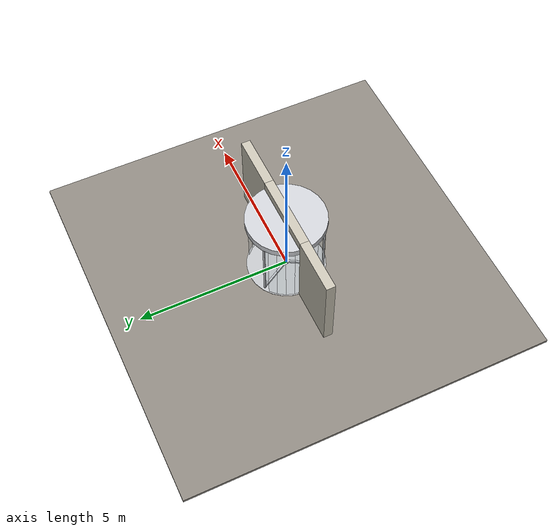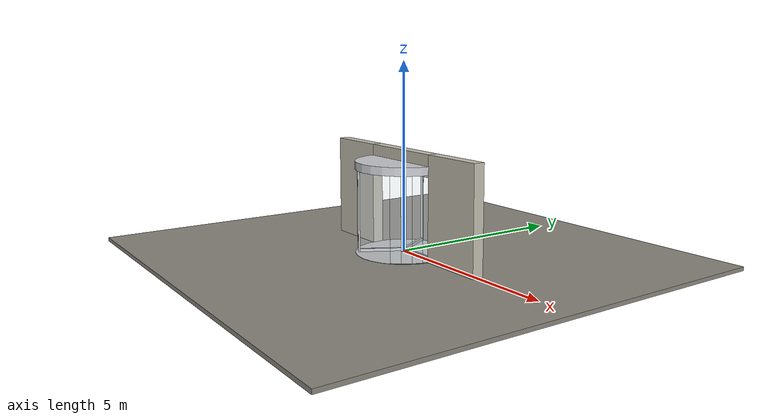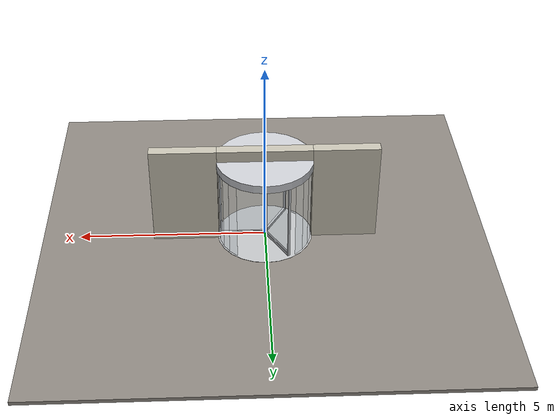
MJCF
<?xml version="1.0" ?>
<mujoco model="db0840_revolving_full">
  <compiler angle="radian" meshdir="../../hardware" texturedir="../../textures" autolimits="true" inertiafromgeom="false"/>
  <option timestep="0.002" integrator="implicitfast" cone="elliptic" impratio="10" noslip_iterations="3">
    <flag multiccd="enable"/>
  </option>
  <size memory="16M"/>
  <default>
    <geom condim="4" solref="0.005 1" solimp="0.95 0.99 0.001"/>
    <joint solreflimit="0.005 1" solimplimit="0.95 0.99 0.001"/>
    <tendon solreflimit="0.005 1"/>
    <equality solref="0.002 1"/>
  </default>
  <visual>
    <headlight ambient="0.4 0.4 0.4" diffuse="0.7 0.7 0.7" specular="0.2 0.2 0.2"/>
    <quality shadowsize="4096"/>
    <map znear="0.01" zfar="60"/>
  </visual>
  <asset>
    <material name="mat_floor" rgba="0.55 0.53 0.5 1" specular="0.2" shininess="0.15" reflectance="0"/>
    <material name="mat_wall" rgba="0.78 0.76 0.7 1" specular="0.2" shininess="0.1" reflectance="0"/>
    <material name="mat_frame" rgba="0.8 0.81 0.83 1" specular="0.8" shininess="0.6" reflectance="0.4"/>
    <material name="mat_drum_glass" rgba="0.85 0.92 0.95 0.25" specular="0.2" shininess="0.95" reflectance="0.1"/>
    <material name="mat_floor_ring" rgba="0.75 0.76 0.77 1" specular="0.8" shininess="0.65" reflectance="0.4"/>
    <texture name="skybox" type="skybox" builtin="gradient" rgb1="0.6 0.7 0.85" rgb2="0.9 0.92 0.95" width="256" height="256"/>
  </asset>
  <worldbody>
    <light name="sun" pos="1.5 -2.5 4" dir="-0.3 0.5 -0.8" directional="true" diffuse="0.8 0.8 0.8" specular="0.3 0.3 0.3" castshadow="true"/>
    <light name="fill" pos="-1.5 2.5 3" dir="0.3 -0.5 -0.7" directional="true" diffuse="0.35 0.35 0.4" castshadow="false"/>
    <camera name="robot_view" pos="0 -2.96875 2.04825" xyaxes="1 0 0 0 0.26963 0.962964" fovy="52"/>
    <camera name="far_view" pos="0 2.96875 2.04825" xyaxes="-1 0 0 0 -0.26963 0.962964" fovy="52"/>
    <camera name="iso" pos="2.25625 -2.49375 2.52325" xyaxes="0.741536 0.670913 0 -0.242917 0.268487 0.932151" fovy="46"/>
    <camera name="detail_handle" pos="0.55 -1.1 1.35" xyaxes="0.975133 0.221621 0 -0.065674 0.288965 0.955084" fovy="38"/>
    <geom name="floor" type="box" size="6 6 0.05" pos="0 0 -0.05" material="mat_floor" group="0" contype="1" conaffinity="1" friction="0.8 0.005 0.0001" density="2400"/>
    <geom name="wall_left" type="box" size="0.875 0.15 1.367" pos="-2.125 0 1.367" material="mat_wall" group="0" contype="1" conaffinity="1" friction="0.6 0.005 0.0001" density="800"/>
    <geom name="wall_right" type="box" size="0.875 0.15 1.367" pos="2.125 0 1.367" material="mat_wall" group="0" contype="1" conaffinity="1" friction="0.6 0.005 0.0001" density="800"/>
    <geom name="wall_header" type="box" size="1.25 0.15 0.15" pos="0 0 2.584" material="mat_wall" group="0" contype="1" conaffinity="1" friction="0.6 0.005 0.0001" density="800"/>
    <geom name="drum_0" type="box" size="0.138884 0.006 1.1095" pos="1.212329 0.136597 1.1095" quat="0.666347 0 0 0.745642" material="mat_drum_glass" group="0" contype="1" conaffinity="1" friction="0.6 0.005 0.0001" density="2500"/>
    <geom name="drum_1" type="box" size="0.138884 0.006 1.1095" pos="1.151538 0.40294 1.1095" quat="0.578671 0 0 0.815561" material="mat_drum_glass" group="0" contype="1" conaffinity="1" friction="0.6 0.005 0.0001" density="2500"/>
    <geom name="drum_2" type="box" size="0.138884 0.006 1.1095" pos="1.033004 0.649079 1.1095" quat="0.483719 0 0 0.875223" material="mat_drum_glass" group="0" contype="1" conaffinity="1" friction="0.6 0.005 0.0001" density="2500"/>
    <geom name="drum_3" type="box" size="0.138884 0.006 1.1095" pos="0.86267 0.86267 1.1095" quat="0.382683 0 0 0.92388" material="mat_drum_glass" group="0" contype="1" conaffinity="1" friction="0.6 0.005 0.0001" density="2500"/>
    <geom name="drum_10" type="box" size="0.138884 0.006 1.1095" pos="-0.86267 0.86267 1.1095" quat="-0.382683 0 0 0.92388" material="mat_drum_glass" group="0" contype="1" conaffinity="1" friction="0.6 0.005 0.0001" density="2500"/>
    <geom name="drum_11" type="box" size="0.138884 0.006 1.1095" pos="-1.033004 0.649079 1.1095" quat="-0.483719 0 0 0.875223" material="mat_drum_glass" group="0" contype="1" conaffinity="1" friction="0.6 0.005 0.0001" density="2500"/>
    <geom name="drum_12" type="box" size="0.138884 0.006 1.1095" pos="-1.151538 0.40294 1.1095" quat="-0.578671 0 0 0.815561" material="mat_drum_glass" group="0" contype="1" conaffinity="1" friction="0.6 0.005 0.0001" density="2500"/>
    <geom name="drum_13" type="box" size="0.138884 0.006 1.1095" pos="-1.212329 0.136597 1.1095" quat="-0.666347 0 0 0.745642" material="mat_drum_glass" group="0" contype="1" conaffinity="1" friction="0.6 0.005 0.0001" density="2500"/>
    <geom name="drum_14" type="box" size="0.138884 0.006 1.1095" pos="-1.212329 -0.136597 1.1095" quat="-0.745642 0 0 0.666347" material="mat_drum_glass" group="0" contype="1" conaffinity="1" friction="0.6 0.005 0.0001" density="2500"/>
    <geom name="drum_15" type="box" size="0.138884 0.006 1.1095" pos="-1.151538 -0.40294 1.1095" quat="-0.815561 0 0 0.578671" material="mat_drum_glass" group="0" contype="1" conaffinity="1" friction="0.6 0.005 0.0001" density="2500"/>
    <geom name="drum_16" type="box" size="0.138884 0.006 1.1095" pos="-1.033004 -0.649079 1.1095" quat="-0.875223 0 0 0.483719" material="mat_drum_glass" group="0" contype="1" conaffinity="1" friction="0.6 0.005 0.0001" density="2500"/>
    <geom name="drum_17" type="box" size="0.138884 0.006 1.1095" pos="-0.86267 -0.86267 1.1095" quat="-0.92388 0 0 0.382683" material="mat_drum_glass" group="0" contype="1" conaffinity="1" friction="0.6 0.005 0.0001" density="2500"/>
    <geom name="drum_24" type="box" size="0.138884 0.006 1.1095" pos="0.86267 -0.86267 1.1095" quat="-0.92388 0 0 -0.382683" material="mat_drum_glass" group="0" contype="1" conaffinity="1" friction="0.6 0.005 0.0001" density="2500"/>
    <geom name="drum_25" type="box" size="0.138884 0.006 1.1095" pos="1.033004 -0.649079 1.1095" quat="-0.875223 0 0 -0.483719" material="mat_drum_glass" group="0" contype="1" conaffinity="1" friction="0.6 0.005 0.0001" density="2500"/>
    <geom name="drum_26" type="box" size="0.138884 0.006 1.1095" pos="1.151538 -0.40294 1.1095" quat="-0.815561 0 0 -0.578671" material="mat_drum_glass" group="0" contype="1" conaffinity="1" friction="0.6 0.005 0.0001" density="2500"/>
    <geom name="drum_27" type="box" size="0.138884 0.006 1.1095" pos="1.212329 -0.136597 1.1095" quat="-0.745642 0 0 -0.666347" material="mat_drum_glass" group="0" contype="1" conaffinity="1" friction="0.6 0.005 0.0001" density="2500"/>
    <geom name="drum_canopy" type="cylinder" size="1.28 0.1075" pos="0 0 2.3265" material="mat_frame" group="0" contype="1" conaffinity="1" friction="0.6 0.005 0.0001" density="300"/>
    <geom name="rotor_top_bearing" type="cylinder" size="0.075 0.003" pos="0 0 2.216" material="mat_frame" group="0" contype="1" conaffinity="1" friction="0.6 0.005 0.0001" density="2700"/>
    <geom name="drum_floor_ring" type="cylinder" size="1.28 0.003" pos="0 0 0.003" material="mat_floor_ring" group="1" contype="0" conaffinity="0" density="7900"/>
    <geom name="rotor_floor_pivot" type="cylinder" size="0.075 0.003" pos="0 0 0.009" material="mat_frame" group="0" contype="1" conaffinity="1" friction="0.6 0.005 0.0001" density="2700"/>
    <site name="approach_point" pos="0 -2.2 0" quat="1 0 0 0" size="0.05" rgba="0.2 0.9 0.2 0.5" group="4"/>
    <site name="goal_point" pos="0 2.2 0" quat="1 0 0 0" size="0.05" rgba="0.2 0.9 0.2 0.5" group="4"/>
    <site name="door_plane_center" pos="0 0 1.067" quat="1 0 0 0" size="0.02" rgba="0.2 0.9 0.2 0.5" group="4"/>
    <body name="rotor" pos="0 0 0">
      <inertial pos="0 0 1.114492" mass="189.8085" quat="0.707107 0 0.707107 0" diaginertia="92.263081423 147.534334909 147.534334909"/>
      <joint name="rotor_hinge" type="hinge" axis="0 0 1" limited="false" damping="39" frictionloss="5.550838" armature="0.5"/>
      <geom name="rotor_shaft" type="cylinder" size="0.06 1.092" pos="0 0 1.112" material="mat_frame" group="0" contype="1" conaffinity="1" friction="0.6 0.005 0.0001" density="2700"/>
      <geom name="rotor_pintle_b" type="cylinder" size="0.03 0.008" pos="0 0 0.016" material="mat_frame" group="1" contype="0" conaffinity="0" density="2700"/>
      <geom name="rotor_pintle_t" type="cylinder" size="0.03 0.0085" pos="0 0 2.2085" material="mat_frame" group="1" contype="0" conaffinity="0" density="2700"/>
      <geom name="wing_0_glass" type="box" size="0.58 0.005 1.017" pos="0.6 0 1.117" material="mat_drum_glass" group="0" contype="1" conaffinity="1" friction="0.6 0.005 0.0001" density="2500"/>
      <geom name="wing_0_stile" type="box" size="0.02 0.03 1.092" pos="1.18 0 1.112" material="mat_frame" group="0" contype="1" conaffinity="1" friction="0.6 0.005 0.0001" density="2700"/>
      <geom name="wing_0_rail_b" type="box" size="0.58 0.03 0.04" pos="0.58 0 0.06" material="mat_frame" group="0" contype="1" conaffinity="1" friction="0.6 0.005 0.0001" density="2700"/>
      <geom name="wing_0_rail_t" type="box" size="0.58 0.03 0.04" pos="0.58 0 2.164" material="mat_frame" group="0" contype="1" conaffinity="1" friction="0.6 0.005 0.0001" density="2700"/>
      <geom name="wing_1_glass" type="box" size="0.58 0.005 1.017" pos="-0.3 0.519615 1.117" quat="0.5 0 0 0.866025" material="mat_drum_glass" group="0" contype="1" conaffinity="1" friction="0.6 0.005 0.0001" density="2500"/>
      <geom name="wing_1_stile" type="box" size="0.02 0.03 1.092" pos="-0.59 1.02191 1.112" quat="0.5 0 0 0.866025" material="mat_frame" group="0" contype="1" conaffinity="1" friction="0.6 0.005 0.0001" density="2700"/>
      <geom name="wing_1_rail_b" type="box" size="0.58 0.03 0.04" pos="-0.29 0.502295 0.06" quat="0.5 0 0 0.866025" material="mat_frame" group="0" contype="1" conaffinity="1" friction="0.6 0.005 0.0001" density="2700"/>
      <geom name="wing_1_rail_t" type="box" size="0.58 0.03 0.04" pos="-0.29 0.502295 2.164" quat="0.5 0 0 0.866025" material="mat_frame" group="0" contype="1" conaffinity="1" friction="0.6 0.005 0.0001" density="2700"/>
      <geom name="wing_2_glass" type="box" size="0.58 0.005 1.017" pos="-0.3 -0.519615 1.117" quat="-0.5 0 0 0.866025" material="mat_drum_glass" group="0" contype="1" conaffinity="1" friction="0.6 0.005 0.0001" density="2500"/>
      <geom name="wing_2_stile" type="box" size="0.02 0.03 1.092" pos="-0.59 -1.02191 1.112" quat="-0.5 0 0 0.866025" material="mat_frame" group="0" contype="1" conaffinity="1" friction="0.6 0.005 0.0001" density="2700"/>
      <geom name="wing_2_rail_b" type="box" size="0.58 0.03 0.04" pos="-0.29 -0.502295 0.06" quat="-0.5 0 0 0.866025" material="mat_frame" group="0" contype="1" conaffinity="1" friction="0.6 0.005 0.0001" density="2700"/>
      <geom name="wing_2_rail_t" type="box" size="0.58 0.03 0.04" pos="-0.29 -0.502295 2.164" quat="-0.5 0 0 0.866025" material="mat_frame" group="0" contype="1" conaffinity="1" friction="0.6 0.005 0.0001" density="2700"/>
    </body>
  </worldbody>
  <sensor>
    <jointpos name="rotor_hinge_pos" joint="rotor_hinge"/>
    <jointvel name="rotor_hinge_vel" joint="rotor_hinge"/>
  </sensor>
</mujoco>
